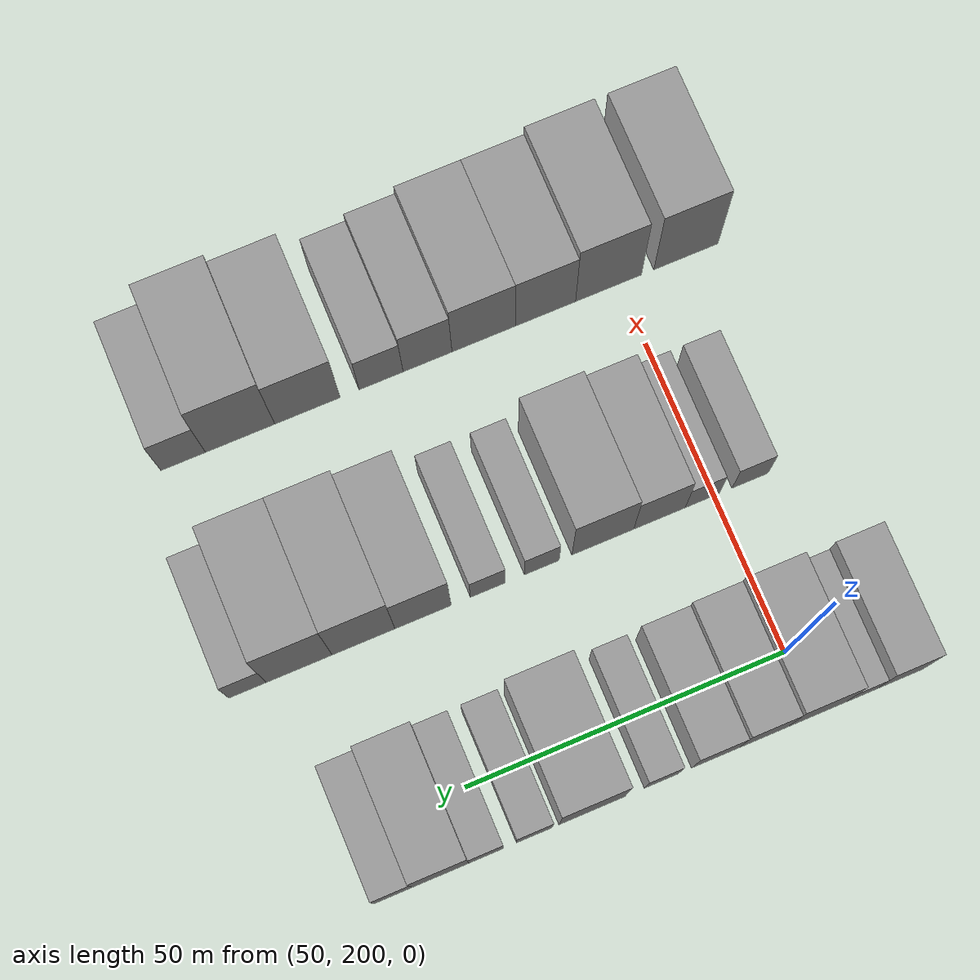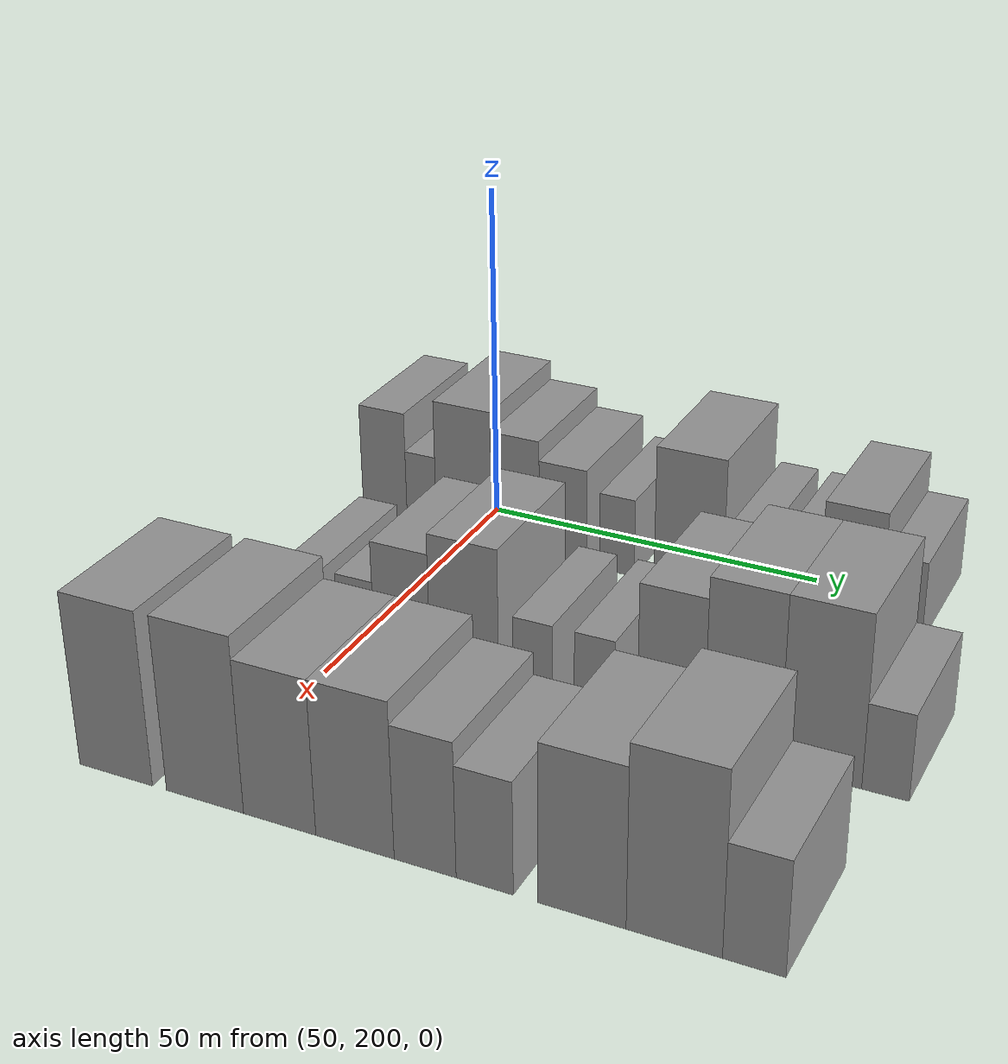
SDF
<sdf version="1.6">
 <world name="default">
  <model name="building_58">
   <static>1</static>
   <pose>50.0000 186.5079 0 0.000000 0.000000 0.000000</pose>
   <link name="link">
    <pose>0 0 9.00 0 0 0</pose>
    <collision name="collision"><geometry><box><size>20.0000 7.3760 18.0000</size></box></geometry></collision>
    <visual name="visual">
     <cast_shadows>0</cast_shadows>
     <geometry><box><size>20.0000 7.3760 18.0000</size></box></geometry>
     <material>
      <script>
       <uri>model://grey_wall/materials/scripts</uri>
       <uri>model://grey_wall/materials/textures</uri>
       <name>vrc/grey_wall</name>
      </script>
     </material>
    </visual>
   </link>
  </model>
  <model name="building_59">
   <static>1</static>
   <pose>50.0000 192.6315 0 0.000000 0.000000 0.000000</pose>
   <link name="link">
    <pose>0 0 6.00 0 0 0</pose>
    <collision name="collision"><geometry><box><size>20.0000 4.8712 12.0000</size></box></geometry></collision>
    <visual name="visual">
     <cast_shadows>0</cast_shadows>
     <geometry><box><size>20.0000 4.8712 12.0000</size></box></geometry>
     <material>
      <script>
       <uri>model://grey_wall/materials/scripts</uri>
       <uri>model://grey_wall/materials/textures</uri>
       <name>vrc/grey_wall</name>
      </script>
     </material>
    </visual>
   </link>
  </model>
  <model name="building_60">
   <static>1</static>
   <pose>50.0000 199.6078 0 0.000000 0.000000 0.000000</pose>
   <link name="link">
    <pose>0 0 10.50 0 0 0</pose>
    <collision name="collision"><geometry><box><size>20.0000 9.0813 21.0000</size></box></geometry></collision>
    <visual name="visual">
     <cast_shadows>0</cast_shadows>
     <geometry><box><size>20.0000 9.0813 21.0000</size></box></geometry>
     <material>
      <script>
       <uri>model://grey_wall/materials/scripts</uri>
       <uri>model://grey_wall/materials/textures</uri>
       <name>vrc/grey_wall</name>
      </script>
     </material>
    </visual>
   </link>
  </model>
  <model name="building_61">
   <static>1</static>
   <pose>50.0000 207.9370 0 0.000000 0.000000 0.000000</pose>
   <link name="link">
    <pose>0 0 9.00 0 0 0</pose>
    <collision name="collision"><geometry><box><size>20.0000 7.5772 18.0000</size></box></geometry></collision>
    <visual name="visual">
     <cast_shadows>0</cast_shadows>
     <geometry><box><size>20.0000 7.5772 18.0000</size></box></geometry>
     <material>
      <script>
       <uri>model://grey_wall/materials/scripts</uri>
       <uri>model://grey_wall/materials/textures</uri>
       <name>vrc/grey_wall</name>
      </script>
     </material>
    </visual>
   </link>
  </model>
  <model name="building_62">
   <static>1</static>
   <pose>50.0000 215.4291 0 0.000000 0.000000 0.000000</pose>
   <link name="link">
    <pose>0 0 7.50 0 0 0</pose>
    <collision name="collision"><geometry><box><size>20.0000 7.4069 15.0000</size></box></geometry></collision>
    <visual name="visual">
     <cast_shadows>0</cast_shadows>
     <geometry><box><size>20.0000 7.4069 15.0000</size></box></geometry>
     <material>
      <script>
       <uri>model://grey_wall/materials/scripts</uri>
       <uri>model://grey_wall/materials/textures</uri>
       <name>vrc/grey_wall</name>
      </script>
     </material>
    </visual>
   </link>
  </model>
  <model name="building_63">
   <static>1</static>
   <pose>50.0000 223.8043 0 0.000000 0.000000 0.000000</pose>
   <link name="link">
    <pose>0 0 6.00 0 0 0</pose>
    <collision name="collision"><geometry><box><size>20.0000 5.3436 12.0000</size></box></geometry></collision>
    <visual name="visual">
     <cast_shadows>0</cast_shadows>
     <geometry><box><size>20.0000 5.3436 12.0000</size></box></geometry>
     <material>
      <script>
       <uri>model://grey_wall/materials/scripts</uri>
       <uri>model://grey_wall/materials/textures</uri>
       <name>vrc/grey_wall</name>
      </script>
     </material>
    </visual>
   </link>
  </model>
  <model name="building_64">
   <static>1</static>
   <pose>50.0000 234.6009 0 0.000000 0.000000 0.000000</pose>
   <link name="link">
    <pose>0 0 10.50 0 0 0</pose>
    <collision name="collision"><geometry><box><size>20.0000 10.2496 21.0000</size></box></geometry></collision>
    <visual name="visual">
     <cast_shadows>0</cast_shadows>
     <geometry><box><size>20.0000 10.2496 21.0000</size></box></geometry>
     <material>
      <script>
       <uri>model://grey_wall/materials/scripts</uri>
       <uri>model://grey_wall/materials/textures</uri>
       <name>vrc/grey_wall</name>
      </script>
     </material>
    </visual>
   </link>
  </model>
  <model name="building_65">
   <static>1</static>
   <pose>50.0000 243.4923 0 0.000000 0.000000 0.000000</pose>
   <link name="link">
    <pose>0 0 6.00 0 0 0</pose>
    <collision name="collision"><geometry><box><size>20.0000 5.5330 12.0000</size></box></geometry></collision>
    <visual name="visual">
     <cast_shadows>0</cast_shadows>
     <geometry><box><size>20.0000 5.5330 12.0000</size></box></geometry>
     <material>
      <script>
       <uri>model://grey_wall/materials/scripts</uri>
       <uri>model://grey_wall/materials/textures</uri>
       <name>vrc/grey_wall</name>
      </script>
     </material>
    </visual>
   </link>
  </model>
  <model name="building_66">
   <static>1</static>
   <pose>50.0000 250.9036 0 0.000000 0.000000 0.000000</pose>
   <link name="link">
    <pose>0 0 6.00 0 0 0</pose>
    <collision name="collision"><geometry><box><size>20.0000 5.2895 12.0000</size></box></geometry></collision>
    <visual name="visual">
     <cast_shadows>0</cast_shadows>
     <geometry><box><size>20.0000 5.2895 12.0000</size></box></geometry>
     <material>
      <script>
       <uri>model://grey_wall/materials/scripts</uri>
       <uri>model://grey_wall/materials/textures</uri>
       <name>vrc/grey_wall</name>
      </script>
     </material>
    </visual>
   </link>
  </model>
  <model name="building_67">
   <static>1</static>
   <pose>50.0000 257.8606 0 0.000000 0.000000 0.000000</pose>
   <link name="link">
    <pose>0 0 9.00 0 0 0</pose>
    <collision name="collision"><geometry><box><size>20.0000 8.6245 18.0000</size></box></geometry></collision>
    <visual name="visual">
     <cast_shadows>0</cast_shadows>
     <geometry><box><size>20.0000 8.6245 18.0000</size></box></geometry>
     <material>
      <script>
       <uri>model://grey_wall/materials/scripts</uri>
       <uri>model://grey_wall/materials/textures</uri>
       <name>vrc/grey_wall</name>
      </script>
     </material>
    </visual>
   </link>
  </model>
  <model name="building_68">
   <static>1</static>
   <pose>50.0000 265.0523 0 0.000000 0.000000 0.000000</pose>
   <link name="link">
    <pose>0 0 6.00 0 0 0</pose>
    <collision name="collision"><geometry><box><size>20.0000 5.7588 12.0000</size></box></geometry></collision>
    <visual name="visual">
     <cast_shadows>0</cast_shadows>
     <geometry><box><size>20.0000 5.7588 12.0000</size></box></geometry>
     <material>
      <script>
       <uri>model://grey_wall/materials/scripts</uri>
       <uri>model://grey_wall/materials/textures</uri>
       <name>vrc/grey_wall</name>
      </script>
     </material>
    </visual>
   </link>
  </model>
  <model name="building_141">
   <static>1</static>
   <pose>85.0000 194.3017 0 0.000000 0.000000 0.000000</pose>
   <link name="link">
    <pose>0 0 6.00 0 0 0</pose>
    <collision name="collision"><geometry><box><size>20.0000 5.8012 12.0000</size></box></geometry></collision>
    <visual name="visual">
     <cast_shadows>0</cast_shadows>
     <geometry><box><size>20.0000 5.8012 12.0000</size></box></geometry>
     <material>
      <script>
       <uri>model://grey_wall/materials/scripts</uri>
       <uri>model://grey_wall/materials/textures</uri>
       <name>vrc/grey_wall</name>
      </script>
     </material>
    </visual>
   </link>
  </model>
  <model name="building_142">
   <static>1</static>
   <pose>85.0000 201.9472 0 0.000000 0.000000 0.000000</pose>
   <link name="link">
    <pose>0 0 6.00 0 0 0</pose>
    <collision name="collision"><geometry><box><size>20.0000 5.4899 12.0000</size></box></geometry></collision>
    <visual name="visual">
     <cast_shadows>0</cast_shadows>
     <geometry><box><size>20.0000 5.4899 12.0000</size></box></geometry>
     <material>
      <script>
       <uri>model://grey_wall/materials/scripts</uri>
       <uri>model://grey_wall/materials/textures</uri>
       <name>vrc/grey_wall</name>
      </script>
     </material>
    </visual>
   </link>
  </model>
  <model name="building_143">
   <static>1</static>
   <pose>85.0000 208.7993 0 0.000000 0.000000 0.000000</pose>
   <link name="link">
    <pose>0 0 9.00 0 0 0</pose>
    <collision name="collision"><geometry><box><size>20.0000 8.2142 18.0000</size></box></geometry></collision>
    <visual name="visual">
     <cast_shadows>0</cast_shadows>
     <geometry><box><size>20.0000 8.2142 18.0000</size></box></geometry>
     <material>
      <script>
       <uri>model://grey_wall/materials/scripts</uri>
       <uri>model://grey_wall/materials/textures</uri>
       <name>vrc/grey_wall</name>
      </script>
     </material>
    </visual>
   </link>
  </model>
  <model name="building_144">
   <static>1</static>
   <pose>85.0000 217.8233 0 0.000000 0.000000 0.000000</pose>
   <link name="link">
    <pose>0 0 10.50 0 0 0</pose>
    <collision name="collision"><geometry><box><size>20.0000 9.8340 21.0000</size></box></geometry></collision>
    <visual name="visual">
     <cast_shadows>0</cast_shadows>
     <geometry><box><size>20.0000 9.8340 21.0000</size></box></geometry>
     <material>
      <script>
       <uri>model://grey_wall/materials/scripts</uri>
       <uri>model://grey_wall/materials/textures</uri>
       <name>vrc/grey_wall</name>
      </script>
     </material>
    </visual>
   </link>
  </model>
  <model name="building_145">
   <static>1</static>
   <pose>85.0000 227.4878 0 0.000000 0.000000 0.000000</pose>
   <link name="link">
    <pose>0 0 6.00 0 0 0</pose>
    <collision name="collision"><geometry><box><size>20.0000 5.4949 12.0000</size></box></geometry></collision>
    <visual name="visual">
     <cast_shadows>0</cast_shadows>
     <geometry><box><size>20.0000 5.4949 12.0000</size></box></geometry>
     <material>
      <script>
       <uri>model://grey_wall/materials/scripts</uri>
       <uri>model://grey_wall/materials/textures</uri>
       <name>vrc/grey_wall</name>
      </script>
     </material>
    </visual>
   </link>
  </model>
  <model name="building_146">
   <static>1</static>
   <pose>85.0000 235.9873 0 0.000000 0.000000 0.000000</pose>
   <link name="link">
    <pose>0 0 6.00 0 0 0</pose>
    <collision name="collision"><geometry><box><size>20.0000 5.5041 12.0000</size></box></geometry></collision>
    <visual name="visual">
     <cast_shadows>0</cast_shadows>
     <geometry><box><size>20.0000 5.5041 12.0000</size></box></geometry>
     <material>
      <script>
       <uri>model://grey_wall/materials/scripts</uri>
       <uri>model://grey_wall/materials/textures</uri>
       <name>vrc/grey_wall</name>
      </script>
     </material>
    </visual>
   </link>
  </model>
  <model name="building_147">
   <static>1</static>
   <pose>85.0000 246.1537 0 0.000000 0.000000 0.000000</pose>
   <link name="link">
    <pose>0 0 10.50 0 0 0</pose>
    <collision name="collision"><geometry><box><size>20.0000 8.8287 21.0000</size></box></geometry></collision>
    <visual name="visual">
     <cast_shadows>0</cast_shadows>
     <geometry><box><size>20.0000 8.8287 21.0000</size></box></geometry>
     <material>
      <script>
       <uri>model://grey_wall/materials/scripts</uri>
       <uri>model://grey_wall/materials/textures</uri>
       <name>vrc/grey_wall</name>
      </script>
     </material>
    </visual>
   </link>
  </model>
  <model name="building_148">
   <static>1</static>
   <pose>85.0000 255.4475 0 0.000000 0.000000 0.000000</pose>
   <link name="link">
    <pose>0 0 12.00 0 0 0</pose>
    <collision name="collision"><geometry><box><size>20.0000 9.7590 24.0000</size></box></geometry></collision>
    <visual name="visual">
     <cast_shadows>0</cast_shadows>
     <geometry><box><size>20.0000 9.7590 24.0000</size></box></geometry>
     <material>
      <script>
       <uri>model://grey_wall/materials/scripts</uri>
       <uri>model://grey_wall/materials/textures</uri>
       <name>vrc/grey_wall</name>
      </script>
     </material>
    </visual>
   </link>
  </model>
  <model name="building_149">
   <static>1</static>
   <pose>85.0000 265.4443 0 0.000000 0.000000 0.000000</pose>
   <link name="link">
    <pose>0 0 12.00 0 0 0</pose>
    <collision name="collision"><geometry><box><size>20.0000 10.2346 24.0000</size></box></geometry></collision>
    <visual name="visual">
     <cast_shadows>0</cast_shadows>
     <geometry><box><size>20.0000 10.2346 24.0000</size></box></geometry>
     <material>
      <script>
       <uri>model://grey_wall/materials/scripts</uri>
       <uri>model://grey_wall/materials/textures</uri>
       <name>vrc/grey_wall</name>
      </script>
     </material>
    </visual>
   </link>
  </model>
  <model name="building_150">
   <static>1</static>
   <pose>85.0000 273.4532 0 0.000000 0.000000 0.000000</pose>
   <link name="link">
    <pose>0 0 6.00 0 0 0</pose>
    <collision name="collision"><geometry><box><size>20.0000 5.7833 12.0000</size></box></geometry></collision>
    <visual name="visual">
     <cast_shadows>0</cast_shadows>
     <geometry><box><size>20.0000 5.7833 12.0000</size></box></geometry>
     <material>
      <script>
       <uri>model://grey_wall/materials/scripts</uri>
       <uri>model://grey_wall/materials/textures</uri>
       <name>vrc/grey_wall</name>
      </script>
     </material>
    </visual>
   </link>
  </model>
  <model name="building_226">
   <static>1</static>
   <pose>120.0000 189.1606 0 0.000000 0.000000 0.000000</pose>
   <link name="link">
    <pose>0 0 12.00 0 0 0</pose>
    <collision name="collision"><geometry><box><size>20.0000 10.5109 24.0000</size></box></geometry></collision>
    <visual name="visual">
     <cast_shadows>0</cast_shadows>
     <geometry><box><size>20.0000 10.5109 24.0000</size></box></geometry>
     <material>
      <script>
       <uri>model://grey_wall/materials/scripts</uri>
       <uri>model://grey_wall/materials/textures</uri>
       <name>vrc/grey_wall</name>
      </script>
     </material>
    </visual>
   </link>
  </model>
  <model name="building_227">
   <static>1</static>
   <pose>120.0000 201.7842 0 0.000000 0.000000 0.000000</pose>
   <link name="link">
    <pose>0 0 12.00 0 0 0</pose>
    <collision name="collision"><geometry><box><size>20.0000 10.7362 24.0000</size></box></geometry></collision>
    <visual name="visual">
     <cast_shadows>0</cast_shadows>
     <geometry><box><size>20.0000 10.7362 24.0000</size></box></geometry>
     <material>
      <script>
       <uri>model://grey_wall/materials/scripts</uri>
       <uri>model://grey_wall/materials/textures</uri>
       <name>vrc/grey_wall</name>
      </script>
     </material>
    </visual>
   </link>
  </model>
  <model name="building_228">
   <static>1</static>
   <pose>120.0000 212.0180 0 0.000000 0.000000 0.000000</pose>
   <link name="link">
    <pose>0 0 10.50 0 0 0</pose>
    <collision name="collision"><geometry><box><size>20.0000 9.7313 21.0000</size></box></geometry></collision>
    <visual name="visual">
     <cast_shadows>0</cast_shadows>
     <geometry><box><size>20.0000 9.7313 21.0000</size></box></geometry>
     <material>
      <script>
       <uri>model://grey_wall/materials/scripts</uri>
       <uri>model://grey_wall/materials/textures</uri>
       <name>vrc/grey_wall</name>
      </script>
     </material>
    </visual>
   </link>
  </model>
  <model name="building_229">
   <static>1</static>
   <pose>120.0000 221.9901 0 0.000000 0.000000 0.000000</pose>
   <link name="link">
    <pose>0 0 10.50 0 0 0</pose>
    <collision name="collision"><geometry><box><size>20.0000 10.2130 21.0000</size></box></geometry></collision>
    <visual name="visual">
     <cast_shadows>0</cast_shadows>
     <geometry><box><size>20.0000 10.2130 21.0000</size></box></geometry>
     <material>
      <script>
       <uri>model://grey_wall/materials/scripts</uri>
       <uri>model://grey_wall/materials/textures</uri>
       <name>vrc/grey_wall</name>
      </script>
     </material>
    </visual>
   </link>
  </model>
  <model name="building_230">
   <static>1</static>
   <pose>120.0000 231.0118 0 0.000000 0.000000 0.000000</pose>
   <link name="link">
    <pose>0 0 9.00 0 0 0</pose>
    <collision name="collision"><geometry><box><size>20.0000 7.8305 18.0000</size></box></geometry></collision>
    <visual name="visual">
     <cast_shadows>0</cast_shadows>
     <geometry><box><size>20.0000 7.8305 18.0000</size></box></geometry>
     <material>
      <script>
       <uri>model://grey_wall/materials/scripts</uri>
       <uri>model://grey_wall/materials/textures</uri>
       <name>vrc/grey_wall</name>
      </script>
     </material>
    </visual>
   </link>
  </model>
  <model name="building_231">
   <static>1</static>
   <pose>120.0000 238.4464 0 0.000000 0.000000 0.000000</pose>
   <link name="link">
    <pose>0 0 7.50 0 0 0</pose>
    <collision name="collision"><geometry><box><size>20.0000 7.0387 15.0000</size></box></geometry></collision>
    <visual name="visual">
     <cast_shadows>0</cast_shadows>
     <geometry><box><size>20.0000 7.0387 15.0000</size></box></geometry>
     <material>
      <script>
       <uri>model://grey_wall/materials/scripts</uri>
       <uri>model://grey_wall/materials/textures</uri>
       <name>vrc/grey_wall</name>
      </script>
     </material>
    </visual>
   </link>
  </model>
  <model name="building_232">
   <static>1</static>
   <pose>120.0000 250.1682 0 0.000000 0.000000 0.000000</pose>
   <link name="link">
    <pose>0 0 10.50 0 0 0</pose>
    <collision name="collision"><geometry><box><size>20.0000 10.4049 21.0000</size></box></geometry></collision>
    <visual name="visual">
     <cast_shadows>0</cast_shadows>
     <geometry><box><size>20.0000 10.4049 21.0000</size></box></geometry>
     <material>
      <script>
       <uri>model://grey_wall/materials/scripts</uri>
       <uri>model://grey_wall/materials/textures</uri>
       <name>vrc/grey_wall</name>
      </script>
     </material>
    </visual>
   </link>
  </model>
  <model name="building_233">
   <static>1</static>
   <pose>120.0000 260.8578 0 0.000000 0.000000 0.000000</pose>
   <link name="link">
    <pose>0 0 12.00 0 0 0</pose>
    <collision name="collision"><geometry><box><size>20.0000 10.9743 24.0000</size></box></geometry></collision>
    <visual name="visual">
     <cast_shadows>0</cast_shadows>
     <geometry><box><size>20.0000 10.9743 24.0000</size></box></geometry>
     <material>
      <script>
       <uri>model://grey_wall/materials/scripts</uri>
       <uri>model://grey_wall/materials/textures</uri>
       <name>vrc/grey_wall</name>
      </script>
     </material>
    </visual>
   </link>
  </model>
  <model name="building_234">
   <static>1</static>
   <pose>120.0000 269.8502 0 0.000000 0.000000 0.000000</pose>
   <link name="link">
    <pose>0 0 7.50 0 0 0</pose>
    <collision name="collision"><geometry><box><size>20.0000 7.0107 15.0000</size></box></geometry></collision>
    <visual name="visual">
     <cast_shadows>0</cast_shadows>
     <geometry><box><size>20.0000 7.0107 15.0000</size></box></geometry>
     <material>
      <script>
       <uri>model://grey_wall/materials/scripts</uri>
       <uri>model://grey_wall/materials/textures</uri>
       <name>vrc/grey_wall</name>
      </script>
     </material>
    </visual>
   </link>
  </model>
 </world>
</sdf>
